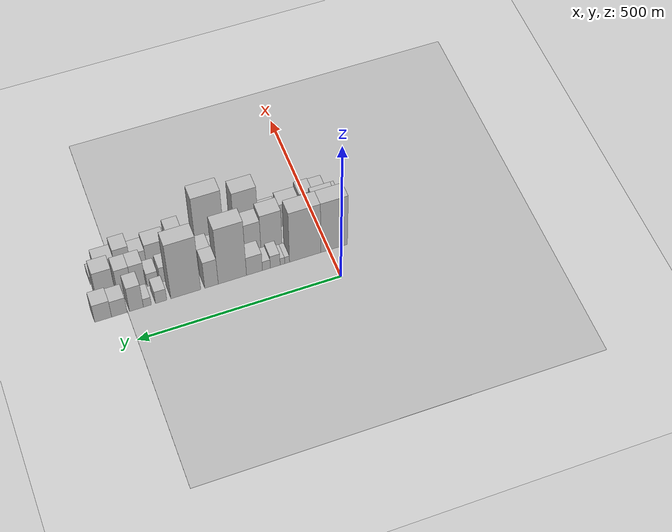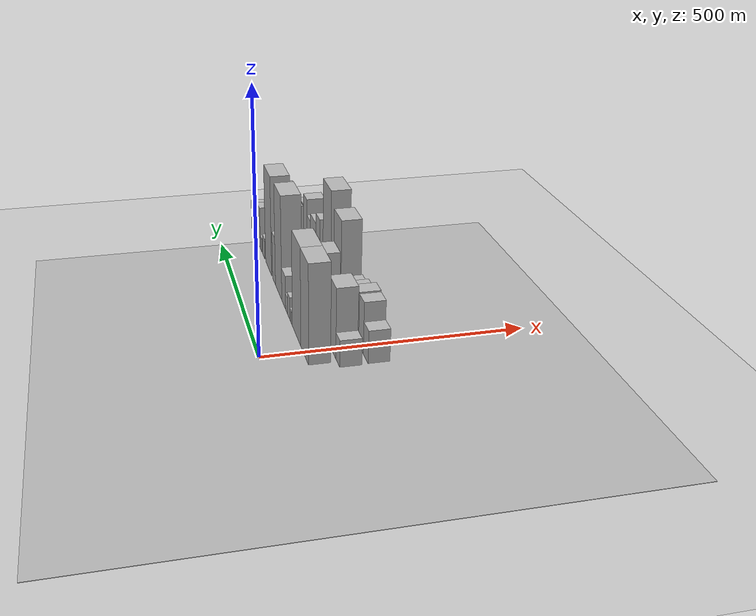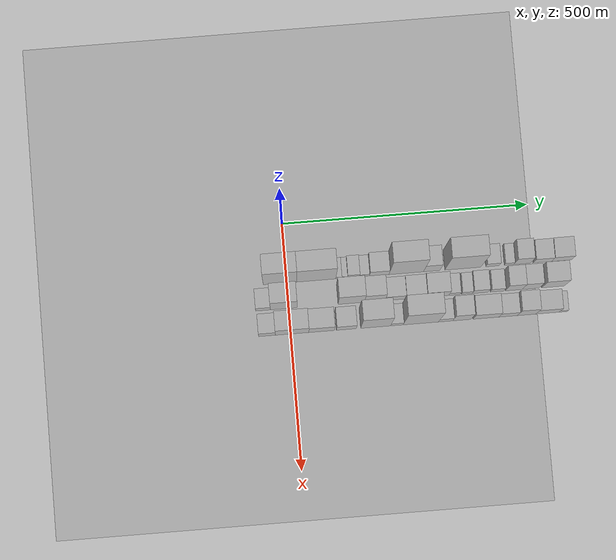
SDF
<sdf version="1.6">
 <world name="default">
  <include><name>ground_plane_1</name><uri>model://HANNAS_ground_plane</uri></include>
  <include>
   <name>ground_plane_2</name>
   <uri>model://HANNAS_ground_plane</uri>
   <pose>100 0 0  0 0 0</pose>
  </include>
  <model name="building_16">
   <static>1</static>
   <pose>100.0000 -12.9384 0 0.000000 0.000000 0.000000</pose>
   <link name="link">
    <pose>0 0 99.00 0 0 0</pose>
    <collision name="collision"><geometry><box><size>40.0000 68.1609 198.0000</size></box></geometry></collision>
    <visual name="visual">
     <cast_shadows>0</cast_shadows>
     <geometry><box><size>40.0000 68.1609 198.0000</size></box></geometry>
     <material>
      <script>
       <uri>model://HANNAS_wall/materials/scripts</uri>
       <uri>model://HANNAS_wall/materials/textures</uri>
       <name>vrc/HANNAS_wall</name>
      </script>
     </material>
    </visual>
   </link>
  </model>
  <model name="building_17">
   <static>1</static>
   <pose>100.0000 60.6066 0 0.000000 0.000000 0.000000</pose>
   <link name="link">
    <pose>0 0 99.00 0 0 0</pose>
    <collision name="collision"><geometry><box><size>40.0000 78.9291 198.0000</size></box></geometry></collision>
    <visual name="visual">
     <cast_shadows>0</cast_shadows>
     <geometry><box><size>40.0000 78.9291 198.0000</size></box></geometry>
     <material>
      <script>
       <uri>model://HANNAS_wall/materials/scripts</uri>
       <uri>model://HANNAS_wall/materials/textures</uri>
       <name>vrc/HANNAS_wall</name>
      </script>
     </material>
    </visual>
   </link>
  </model>
  <model name="building_18">
   <static>1</static>
   <pose>100.0000 106.1872 0 0.000000 0.000000 0.000000</pose>
   <link name="link">
    <pose>0 0 13.50 0 0 0</pose>
    <collision name="collision"><geometry><box><size>40.0000 12.2322 27.0000</size></box></geometry></collision>
    <visual name="visual">
     <cast_shadows>0</cast_shadows>
     <geometry><box><size>40.0000 12.2322 27.0000</size></box></geometry>
     <material>
      <script>
       <uri>model://HANNAS_wall/materials/scripts</uri>
       <uri>model://HANNAS_wall/materials/textures</uri>
       <name>vrc/HANNAS_wall</name>
      </script>
     </material>
    </visual>
   </link>
  </model>
  <model name="building_19">
   <static>1</static>
   <pose>100.0000 118.0213 0 0.000000 0.000000 0.000000</pose>
   <link name="link">
    <pose>0 0 13.50 0 0 0</pose>
    <collision name="collision"><geometry><box><size>40.0000 11.4359 27.0000</size></box></geometry></collision>
    <visual name="visual">
     <cast_shadows>0</cast_shadows>
     <geometry><box><size>40.0000 11.4359 27.0000</size></box></geometry>
     <material>
      <script>
       <uri>model://HANNAS_wall/materials/scripts</uri>
       <uri>model://HANNAS_wall/materials/textures</uri>
       <name>vrc/HANNAS_wall</name>
      </script>
     </material>
    </visual>
   </link>
  </model>
  <model name="building_20">
   <static>1</static>
   <pose>100.0000 136.0296 0 0.000000 0.000000 0.000000</pose>
   <link name="link">
    <pose>0 0 24.00 0 0 0</pose>
    <collision name="collision"><geometry><box><size>40.0000 24.5808 48.0000</size></box></geometry></collision>
    <visual name="visual">
     <cast_shadows>0</cast_shadows>
     <geometry><box><size>40.0000 24.5808 48.0000</size></box></geometry>
     <material>
      <script>
       <uri>model://HANNAS_wall/materials/scripts</uri>
       <uri>model://HANNAS_wall/materials/textures</uri>
       <name>vrc/HANNAS_wall</name>
      </script>
     </material>
    </visual>
   </link>
  </model>
  <model name="building_21">
   <static>1</static>
   <pose>100.0000 158.2399 0 0.000000 0.000000 0.000000</pose>
   <link name="link">
    <pose>0 0 18.00 0 0 0</pose>
    <collision name="collision"><geometry><box><size>40.0000 19.8397 36.0000</size></box></geometry></collision>
    <visual name="visual">
     <cast_shadows>0</cast_shadows>
     <geometry><box><size>40.0000 19.8397 36.0000</size></box></geometry>
     <material>
      <script>
       <uri>model://HANNAS_wall/materials/scripts</uri>
       <uri>model://HANNAS_wall/materials/textures</uri>
       <name>vrc/HANNAS_wall</name>
      </script>
     </material>
    </visual>
   </link>
  </model>
  <model name="building_22">
   <static>1</static>
   <pose>100.0000 188.0186 0 0.000000 0.000000 0.000000</pose>
   <link name="link">
    <pose>0 0 36.00 0 0 0</pose>
    <collision name="collision"><geometry><box><size>40.0000 39.7177 72.0000</size></box></geometry></collision>
    <visual name="visual">
     <cast_shadows>0</cast_shadows>
     <geometry><box><size>40.0000 39.7177 72.0000</size></box></geometry>
     <material>
      <script>
       <uri>model://HANNAS_wall/materials/scripts</uri>
       <uri>model://HANNAS_wall/materials/textures</uri>
       <name>vrc/HANNAS_wall</name>
      </script>
     </material>
    </visual>
   </link>
  </model>
  <model name="building_23">
   <static>1</static>
   <pose>100.0000 242.9697 0 0.000000 0.000000 0.000000</pose>
   <link name="link">
    <pose>0 0 111.00 0 0 0</pose>
    <collision name="collision"><geometry><box><size>40.0000 70.1845 222.0000</size></box></geometry></collision>
    <visual name="visual">
     <cast_shadows>0</cast_shadows>
     <geometry><box><size>40.0000 70.1845 222.0000</size></box></geometry>
     <material>
      <script>
       <uri>model://HANNAS_wall/materials/scripts</uri>
       <uri>model://HANNAS_wall/materials/textures</uri>
       <name>vrc/HANNAS_wall</name>
      </script>
     </material>
    </visual>
   </link>
  </model>
  <model name="building_24">
   <static>1</static>
   <pose>100.0000 294.7581 0 0.000000 0.000000 0.000000</pose>
   <link name="link">
    <pose>0 0 52.50 0 0 0</pose>
    <collision name="collision"><geometry><box><size>40.0000 33.3922 105.0000</size></box></geometry></collision>
    <visual name="visual">
     <cast_shadows>0</cast_shadows>
     <geometry><box><size>40.0000 33.3922 105.0000</size></box></geometry>
     <material>
      <script>
       <uri>model://HANNAS_wall/materials/scripts</uri>
       <uri>model://HANNAS_wall/materials/textures</uri>
       <name>vrc/HANNAS_wall</name>
      </script>
     </material>
    </visual>
   </link>
  </model>
  <model name="building_25">
   <static>1</static>
   <pose>100.0000 358.0408 0 0.000000 0.000000 0.000000</pose>
   <link name="link">
    <pose>0 0 109.50 0 0 0</pose>
    <collision name="collision"><geometry><box><size>40.0000 73.1731 219.0000</size></box></geometry></collision>
    <visual name="visual">
     <cast_shadows>0</cast_shadows>
     <geometry><box><size>40.0000 73.1731 219.0000</size></box></geometry>
     <material>
      <script>
       <uri>model://HANNAS_wall/materials/scripts</uri>
       <uri>model://HANNAS_wall/materials/textures</uri>
       <name>vrc/HANNAS_wall</name>
      </script>
     </material>
    </visual>
   </link>
  </model>
  <model name="building_26">
   <static>1</static>
   <pose>100.0000 418.4843 0 0.000000 0.000000 0.000000</pose>
   <link name="link">
    <pose>0 0 24.00 0 0 0</pose>
    <collision name="collision"><geometry><box><size>40.0000 27.7140 48.0000</size></box></geometry></collision>
    <visual name="visual">
     <cast_shadows>0</cast_shadows>
     <geometry><box><size>40.0000 27.7140 48.0000</size></box></geometry>
     <material>
      <script>
       <uri>model://HANNAS_wall/materials/scripts</uri>
       <uri>model://HANNAS_wall/materials/textures</uri>
       <name>vrc/HANNAS_wall</name>
      </script>
     </material>
    </visual>
   </link>
  </model>
  <model name="building_27">
   <static>1</static>
   <pose>100.0000 452.0103 0 0.000000 0.000000 0.000000</pose>
   <link name="link">
    <pose>0 0 16.50 0 0 0</pose>
    <collision name="collision"><geometry><box><size>40.0000 19.3379 33.0000</size></box></geometry></collision>
    <visual name="visual">
     <cast_shadows>0</cast_shadows>
     <geometry><box><size>40.0000 19.3379 33.0000</size></box></geometry>
     <material>
      <script>
       <uri>model://HANNAS_wall/materials/scripts</uri>
       <uri>model://HANNAS_wall/materials/textures</uri>
       <name>vrc/HANNAS_wall</name>
      </script>
     </material>
    </visual>
   </link>
  </model>
  <model name="building_28">
   <static>1</static>
   <pose>100.0000 478.5497 0 0.000000 0.000000 0.000000</pose>
   <link name="link">
    <pose>0 0 48.00 0 0 0</pose>
    <collision name="collision"><geometry><box><size>40.0000 33.7410 96.0000</size></box></geometry></collision>
    <visual name="visual">
     <cast_shadows>0</cast_shadows>
     <geometry><box><size>40.0000 33.7410 96.0000</size></box></geometry>
     <material>
      <script>
       <uri>model://HANNAS_wall/materials/scripts</uri>
       <uri>model://HANNAS_wall/materials/textures</uri>
       <name>vrc/HANNAS_wall</name>
      </script>
     </material>
    </visual>
   </link>
  </model>
  <model name="building_29">
   <static>1</static>
   <pose>100.0000 520.0226 0 0.000000 0.000000 0.000000</pose>
   <link name="link">
    <pose>0 0 31.50 0 0 0</pose>
    <collision name="collision"><geometry><box><size>40.0000 37.2048 63.0000</size></box></geometry></collision>
    <visual name="visual">
     <cast_shadows>0</cast_shadows>
     <geometry><box><size>40.0000 37.2048 63.0000</size></box></geometry>
     <material>
      <script>
       <uri>model://HANNAS_wall/materials/scripts</uri>
       <uri>model://HANNAS_wall/materials/textures</uri>
       <name>vrc/HANNAS_wall</name>
      </script>
     </material>
    </visual>
   </link>
  </model>
  <model name="building_30">
   <static>1</static>
   <pose>100.0000 558.9845 0 0.000000 0.000000 0.000000</pose>
   <link name="link">
    <pose>0 0 34.50 0 0 0</pose>
    <collision name="collision"><geometry><box><size>40.0000 40.7190 69.0000</size></box></geometry></collision>
    <visual name="visual">
     <cast_shadows>0</cast_shadows>
     <geometry><box><size>40.0000 40.7190 69.0000</size></box></geometry>
     <material>
      <script>
       <uri>model://HANNAS_wall/materials/scripts</uri>
       <uri>model://HANNAS_wall/materials/textures</uri>
       <name>vrc/HANNAS_wall</name>
      </script>
     </material>
    </visual>
   </link>
  </model>
  <model name="building_49">
   <static>1</static>
   <pose>152.0000 -51.4175 0 0.000000 0.000000 0.000000</pose>
   <link name="link">
    <pose>0 0 27.00 0 0 0</pose>
    <collision name="collision"><geometry><box><size>40.0000 29.8444 54.0000</size></box></geometry></collision>
    <visual name="visual">
     <cast_shadows>0</cast_shadows>
     <geometry><box><size>40.0000 29.8444 54.0000</size></box></geometry>
     <material>
      <script>
       <uri>model://HANNAS_wall/materials/scripts</uri>
       <uri>model://HANNAS_wall/materials/textures</uri>
       <name>vrc/HANNAS_wall</name>
      </script>
     </material>
    </visual>
   </link>
  </model>
  <model name="building_50">
   <static>1</static>
   <pose>152.0000 -9.5820 0 0.000000 0.000000 0.000000</pose>
   <link name="link">
    <pose>0 0 70.50 0 0 0</pose>
    <collision name="collision"><geometry><box><size>40.0000 53.8266 141.0000</size></box></geometry></collision>
    <visual name="visual">
     <cast_shadows>0</cast_shadows>
     <geometry><box><size>40.0000 53.8266 141.0000</size></box></geometry>
     <material>
      <script>
       <uri>model://HANNAS_wall/materials/scripts</uri>
       <uri>model://HANNAS_wall/materials/textures</uri>
       <name>vrc/HANNAS_wall</name>
      </script>
     </material>
    </visual>
   </link>
  </model>
  <model name="building_51">
   <static>1</static>
   <pose>152.0000 126.9348 0 0.000000 0.000000 0.000000</pose>
   <link name="link">
    <pose>0 0 72.00 0 0 0</pose>
    <collision name="collision"><geometry><box><size>40.0000 53.0690 144.0000</size></box></geometry></collision>
    <visual name="visual">
     <cast_shadows>0</cast_shadows>
     <geometry><box><size>40.0000 53.0690 144.0000</size></box></geometry>
     <material>
      <script>
       <uri>model://HANNAS_wall/materials/scripts</uri>
       <uri>model://HANNAS_wall/materials/textures</uri>
       <name>vrc/HANNAS_wall</name>
      </script>
     </material>
    </visual>
   </link>
  </model>
  <model name="building_52">
   <static>1</static>
   <pose>152.0000 174.4519 0 0.000000 0.000000 0.000000</pose>
   <link name="link">
    <pose>0 0 63.00 0 0 0</pose>
    <collision name="collision"><geometry><box><size>40.0000 41.9653 126.0000</size></box></geometry></collision>
    <visual name="visual">
     <cast_shadows>0</cast_shadows>
     <geometry><box><size>40.0000 41.9653 126.0000</size></box></geometry>
     <material>
      <script>
       <uri>model://HANNAS_wall/materials/scripts</uri>
       <uri>model://HANNAS_wall/materials/textures</uri>
       <name>vrc/HANNAS_wall</name>
      </script>
     </material>
    </visual>
   </link>
  </model>
  <model name="building_53">
   <static>1</static>
   <pose>152.0000 215.9594 0 0.000000 0.000000 0.000000</pose>
   <link name="link">
    <pose>0 0 34.50 0 0 0</pose>
    <collision name="collision"><geometry><box><size>40.0000 41.0497 69.0000</size></box></geometry></collision>
    <visual name="visual">
     <cast_shadows>0</cast_shadows>
     <geometry><box><size>40.0000 41.0497 69.0000</size></box></geometry>
     <material>
      <script>
       <uri>model://HANNAS_wall/materials/scripts</uri>
       <uri>model://HANNAS_wall/materials/textures</uri>
       <name>vrc/HANNAS_wall</name>
      </script>
     </material>
    </visual>
   </link>
  </model>
  <model name="building_54">
   <static>1</static>
   <pose>152.0000 257.1814 0 0.000000 0.000000 0.000000</pose>
   <link name="link">
    <pose>0 0 37.50 0 0 0</pose>
    <collision name="collision"><geometry><box><size>40.0000 41.3941 75.0000</size></box></geometry></collision>
    <visual name="visual">
     <cast_shadows>0</cast_shadows>
     <geometry><box><size>40.0000 41.3941 75.0000</size></box></geometry>
     <material>
      <script>
       <uri>model://HANNAS_wall/materials/scripts</uri>
       <uri>model://HANNAS_wall/materials/textures</uri>
       <name>vrc/HANNAS_wall</name>
      </script>
     </material>
    </visual>
   </link>
  </model>
  <model name="building_55">
   <static>1</static>
   <pose>152.0000 301.3035 0 0.000000 0.000000 0.000000</pose>
   <link name="link">
    <pose>0 0 43.50 0 0 0</pose>
    <collision name="collision"><geometry><box><size>40.0000 46.8502 87.0000</size></box></geometry></collision>
    <visual name="visual">
     <cast_shadows>0</cast_shadows>
     <geometry><box><size>40.0000 46.8502 87.0000</size></box></geometry>
     <material>
      <script>
       <uri>model://HANNAS_wall/materials/scripts</uri>
       <uri>model://HANNAS_wall/materials/textures</uri>
       <name>vrc/HANNAS_wall</name>
      </script>
     </material>
    </visual>
   </link>
  </model>
  <model name="building_56">
   <static>1</static>
   <pose>152.0000 336.2653 0 0.000000 0.000000 0.000000</pose>
   <link name="link">
    <pose>0 0 21.00 0 0 0</pose>
    <collision name="collision"><geometry><box><size>40.0000 23.0735 42.0000</size></box></geometry></collision>
    <visual name="visual">
     <cast_shadows>0</cast_shadows>
     <geometry><box><size>40.0000 23.0735 42.0000</size></box></geometry>
     <material>
      <script>
       <uri>model://HANNAS_wall/materials/scripts</uri>
       <uri>model://HANNAS_wall/materials/textures</uri>
       <name>vrc/HANNAS_wall</name>
      </script>
     </material>
    </visual>
   </link>
  </model>
  <model name="building_57">
   <static>1</static>
   <pose>152.0000 361.8748 0 0.000000 0.000000 0.000000</pose>
   <link name="link">
    <pose>0 0 19.50 0 0 0</pose>
    <collision name="collision"><geometry><box><size>40.0000 22.1456 39.0000</size></box></geometry></collision>
    <visual name="visual">
     <cast_shadows>0</cast_shadows>
     <geometry><box><size>40.0000 22.1456 39.0000</size></box></geometry>
     <material>
      <script>
       <uri>model://HANNAS_wall/materials/scripts</uri>
       <uri>model://HANNAS_wall/materials/textures</uri>
       <name>vrc/HANNAS_wall</name>
      </script>
     </material>
    </visual>
   </link>
  </model>
  <model name="building_58">
   <static>1</static>
   <pose>152.0000 388.9664 0 0.000000 0.000000 0.000000</pose>
   <link name="link">
    <pose>0 0 30.00 0 0 0</pose>
    <collision name="collision"><geometry><box><size>40.0000 32.0376 60.0000</size></box></geometry></collision>
    <visual name="visual">
     <cast_shadows>0</cast_shadows>
     <geometry><box><size>40.0000 32.0376 60.0000</size></box></geometry>
     <material>
      <script>
       <uri>model://HANNAS_wall/materials/scripts</uri>
       <uri>model://HANNAS_wall/materials/textures</uri>
       <name>vrc/HANNAS_wall</name>
      </script>
     </material>
    </visual>
   </link>
  </model>
  <model name="building_59">
   <static>1</static>
   <pose>152.0000 422.7655 0 0.000000 0.000000 0.000000</pose>
   <link name="link">
    <pose>0 0 25.50 0 0 0</pose>
    <collision name="collision"><geometry><box><size>40.0000 27.5606 51.0000</size></box></geometry></collision>
    <visual name="visual">
     <cast_shadows>0</cast_shadows>
     <geometry><box><size>40.0000 27.5606 51.0000</size></box></geometry>
     <material>
      <script>
       <uri>model://HANNAS_wall/materials/scripts</uri>
       <uri>model://HANNAS_wall/materials/textures</uri>
       <name>vrc/HANNAS_wall</name>
      </script>
     </material>
    </visual>
   </link>
  </model>
  <model name="building_60">
   <static>1</static>
   <pose>152.0000 456.7086 0 0.000000 0.000000 0.000000</pose>
   <link name="link">
    <pose>0 0 51.00 0 0 0</pose>
    <collision name="collision"><geometry><box><size>40.0000 34.3255 102.0000</size></box></geometry></collision>
    <visual name="visual">
     <cast_shadows>0</cast_shadows>
     <geometry><box><size>40.0000 34.3255 102.0000</size></box></geometry>
     <material>
      <script>
       <uri>model://HANNAS_wall/materials/scripts</uri>
       <uri>model://HANNAS_wall/materials/textures</uri>
       <name>vrc/HANNAS_wall</name>
      </script>
     </material>
    </visual>
   </link>
  </model>
  <model name="building_61">
   <static>1</static>
   <pose>152.0000 491.1172 0 0.000000 0.000000 0.000000</pose>
   <link name="link">
    <pose>0 0 51.00 0 0 0</pose>
    <collision name="collision"><geometry><box><size>40.0000 34.4919 102.0000</size></box></geometry></collision>
    <visual name="visual">
     <cast_shadows>0</cast_shadows>
     <geometry><box><size>40.0000 34.4919 102.0000</size></box></geometry>
     <material>
      <script>
       <uri>model://HANNAS_wall/materials/scripts</uri>
       <uri>model://HANNAS_wall/materials/textures</uri>
       <name>vrc/HANNAS_wall</name>
      </script>
     </material>
    </visual>
   </link>
  </model>
  <model name="building_62">
   <static>1</static>
   <pose>152.0000 536.3195 0 0.000000 0.000000 0.000000</pose>
   <link name="link">
    <pose>0 0 58.50 0 0 0</pose>
    <collision name="collision"><geometry><box><size>40.0000 45.9126 117.0000</size></box></geometry></collision>
    <visual name="visual">
     <cast_shadows>0</cast_shadows>
     <geometry><box><size>40.0000 45.9126 117.0000</size></box></geometry>
     <material>
      <script>
       <uri>model://HANNAS_wall/materials/scripts</uri>
       <uri>model://HANNAS_wall/materials/textures</uri>
       <name>vrc/HANNAS_wall</name>
      </script>
     </material>
    </visual>
   </link>
  </model>
  <model name="building_75">
   <static>1</static>
   <pose>204.0000 -47.5161 0 0.000000 0.000000 0.000000</pose>
   <link name="link">
    <pose>0 0 33.00 0 0 0</pose>
    <collision name="collision"><geometry><box><size>40.0000 33.8776 66.0000</size></box></geometry></collision>
    <visual name="visual">
     <cast_shadows>0</cast_shadows>
     <geometry><box><size>40.0000 33.8776 66.0000</size></box></geometry>
     <material>
      <script>
       <uri>model://HANNAS_wall/materials/scripts</uri>
       <uri>model://HANNAS_wall/materials/textures</uri>
       <name>vrc/HANNAS_wall</name>
      </script>
     </material>
    </visual>
   </link>
  </model>
  <model name="building_76">
   <static>1</static>
   <pose>204.0000 -13.7447 0 0.000000 0.000000 0.000000</pose>
   <link name="link">
    <pose>0 0 52.50 0 0 0</pose>
    <collision name="collision"><geometry><box><size>40.0000 33.6651 105.0000</size></box></geometry></collision>
    <visual name="visual">
     <cast_shadows>0</cast_shadows>
     <geometry><box><size>40.0000 33.6651 105.0000</size></box></geometry>
     <material>
      <script>
       <uri>model://HANNAS_wall/materials/scripts</uri>
       <uri>model://HANNAS_wall/materials/textures</uri>
       <name>vrc/HANNAS_wall</name>
      </script>
     </material>
    </visual>
   </link>
  </model>
  <model name="building_77">
   <static>1</static>
   <pose>204.0000 19.9816 0 0.000000 0.000000 0.000000</pose>
   <link name="link">
    <pose>0 0 54.00 0 0 0</pose>
    <collision name="collision"><geometry><box><size>40.0000 33.7875 108.0000</size></box></geometry></collision>
    <visual name="visual">
     <cast_shadows>0</cast_shadows>
     <geometry><box><size>40.0000 33.7875 108.0000</size></box></geometry>
     <material>
      <script>
       <uri>model://HANNAS_wall/materials/scripts</uri>
       <uri>model://HANNAS_wall/materials/textures</uri>
       <name>vrc/HANNAS_wall</name>
      </script>
     </material>
    </visual>
   </link>
  </model>
  <model name="building_78">
   <static>1</static>
   <pose>204.0000 62.8105 0 0.000000 0.000000 0.000000</pose>
   <link name="link">
    <pose>0 0 45.00 0 0 0</pose>
    <collision name="collision"><geometry><box><size>40.0000 51.8705 90.0000</size></box></geometry></collision>
    <visual name="visual">
     <cast_shadows>0</cast_shadows>
     <geometry><box><size>40.0000 51.8705 90.0000</size></box></geometry>
     <material>
      <script>
       <uri>model://HANNAS_wall/materials/scripts</uri>
       <uri>model://HANNAS_wall/materials/textures</uri>
       <name>vrc/HANNAS_wall</name>
      </script>
     </material>
    </visual>
   </link>
  </model>
  <model name="building_79">
   <static>1</static>
   <pose>204.0000 112.8228 0 0.000000 0.000000 0.000000</pose>
   <link name="link">
    <pose>0 0 39.00 0 0 0</pose>
    <collision name="collision"><geometry><box><size>40.0000 40.1541 78.0000</size></box></geometry></collision>
    <visual name="visual">
     <cast_shadows>0</cast_shadows>
     <geometry><box><size>40.0000 40.1541 78.0000</size></box></geometry>
     <material>
      <script>
       <uri>model://HANNAS_wall/materials/scripts</uri>
       <uri>model://HANNAS_wall/materials/textures</uri>
       <name>vrc/HANNAS_wall</name>
      </script>
     </material>
    </visual>
   </link>
  </model>
  <model name="building_80">
   <static>1</static>
   <pose>204.0000 172.1068 0 0.000000 0.000000 0.000000</pose>
   <link name="link">
    <pose>0 0 94.50 0 0 0</pose>
    <collision name="collision"><geometry><box><size>40.0000 60.4139 189.0000</size></box></geometry></collision>
    <visual name="visual">
     <cast_shadows>0</cast_shadows>
     <geometry><box><size>40.0000 60.4139 189.0000</size></box></geometry>
     <material>
      <script>
       <uri>model://HANNAS_wall/materials/scripts</uri>
       <uri>model://HANNAS_wall/materials/textures</uri>
       <name>vrc/HANNAS_wall</name>
      </script>
     </material>
    </visual>
   </link>
  </model>
  <model name="building_81">
   <static>1</static>
   <pose>204.0000 215.1032 0 0.000000 0.000000 0.000000</pose>
   <link name="link">
    <pose>0 0 22.50 0 0 0</pose>
    <collision name="collision"><geometry><box><size>40.0000 25.5790 45.0000</size></box></geometry></collision>
    <visual name="visual">
     <cast_shadows>0</cast_shadows>
     <geometry><box><size>40.0000 25.5790 45.0000</size></box></geometry>
     <material>
      <script>
       <uri>model://HANNAS_wall/materials/scripts</uri>
       <uri>model://HANNAS_wall/materials/textures</uri>
       <name>vrc/HANNAS_wall</name>
      </script>
     </material>
    </visual>
   </link>
  </model>
  <model name="building_82">
   <static>1</static>
   <pose>204.0000 263.6049 0 0.000000 0.000000 0.000000</pose>
   <link name="link">
    <pose>0 0 108.00 0 0 0</pose>
    <collision name="collision"><geometry><box><size>40.0000 71.4243 216.0000</size></box></geometry></collision>
    <visual name="visual">
     <cast_shadows>0</cast_shadows>
     <geometry><box><size>40.0000 71.4243 216.0000</size></box></geometry>
     <material>
      <script>
       <uri>model://HANNAS_wall/materials/scripts</uri>
       <uri>model://HANNAS_wall/materials/textures</uri>
       <name>vrc/HANNAS_wall</name>
      </script>
     </material>
    </visual>
   </link>
  </model>
  <model name="building_83">
   <static>1</static>
   <pose>204.0000 313.8555 0 0.000000 0.000000 0.000000</pose>
   <link name="link">
    <pose>0 0 28.50 0 0 0</pose>
    <collision name="collision"><geometry><box><size>40.0000 29.0768 57.0000</size></box></geometry></collision>
    <visual name="visual">
     <cast_shadows>0</cast_shadows>
     <geometry><box><size>40.0000 29.0768 57.0000</size></box></geometry>
     <material>
      <script>
       <uri>model://HANNAS_wall/materials/scripts</uri>
       <uri>model://HANNAS_wall/materials/textures</uri>
       <name>vrc/HANNAS_wall</name>
      </script>
     </material>
    </visual>
   </link>
  </model>
  <model name="building_84">
   <static>1</static>
   <pose>204.0000 346.9499 0 0.000000 0.000000 0.000000</pose>
   <link name="link">
    <pose>0 0 57.00 0 0 0</pose>
    <collision name="collision"><geometry><box><size>40.0000 37.1121 114.0000</size></box></geometry></collision>
    <visual name="visual">
     <cast_shadows>0</cast_shadows>
     <geometry><box><size>40.0000 37.1121 114.0000</size></box></geometry>
     <material>
      <script>
       <uri>model://HANNAS_wall/materials/scripts</uri>
       <uri>model://HANNAS_wall/materials/textures</uri>
       <name>vrc/HANNAS_wall</name>
      </script>
     </material>
    </visual>
   </link>
  </model>
  <model name="building_85">
   <static>1</static>
   <pose>204.0000 395.6365 0 0.000000 0.000000 0.000000</pose>
   <link name="link">
    <pose>0 0 45.00 0 0 0</pose>
    <collision name="collision"><geometry><box><size>40.0000 52.2611 90.0000</size></box></geometry></collision>
    <visual name="visual">
     <cast_shadows>0</cast_shadows>
     <geometry><box><size>40.0000 52.2611 90.0000</size></box></geometry>
     <material>
      <script>
       <uri>model://HANNAS_wall/materials/scripts</uri>
       <uri>model://HANNAS_wall/materials/textures</uri>
       <name>vrc/HANNAS_wall</name>
      </script>
     </material>
    </visual>
   </link>
  </model>
  <model name="building_86">
   <static>1</static>
   <pose>204.0000 440.4261 0 0.000000 0.000000 0.000000</pose>
   <link name="link">
    <pose>0 0 36.00 0 0 0</pose>
    <collision name="collision"><geometry><box><size>40.0000 37.3181 72.0000</size></box></geometry></collision>
    <visual name="visual">
     <cast_shadows>0</cast_shadows>
     <geometry><box><size>40.0000 37.3181 72.0000</size></box></geometry>
     <material>
      <script>
       <uri>model://HANNAS_wall/materials/scripts</uri>
       <uri>model://HANNAS_wall/materials/textures</uri>
       <name>vrc/HANNAS_wall</name>
      </script>
     </material>
    </visual>
   </link>
  </model>
  <model name="building_87">
   <static>1</static>
   <pose>204.0000 477.8053 0 0.000000 0.000000 0.000000</pose>
   <link name="link">
    <pose>0 0 54.00 0 0 0</pose>
    <collision name="collision"><geometry><box><size>40.0000 37.4404 108.0000</size></box></geometry></collision>
    <visual name="visual">
     <cast_shadows>0</cast_shadows>
     <geometry><box><size>40.0000 37.4404 108.0000</size></box></geometry>
     <material>
      <script>
       <uri>model://HANNAS_wall/materials/scripts</uri>
       <uri>model://HANNAS_wall/materials/textures</uri>
       <name>vrc/HANNAS_wall</name>
      </script>
     </material>
    </visual>
   </link>
  </model>
  <model name="building_88">
   <static>1</static>
   <pose>204.0000 520.0222 0 0.000000 0.000000 0.000000</pose>
   <link name="link">
    <pose>0 0 40.50 0 0 0</pose>
    <collision name="collision"><geometry><box><size>40.0000 46.9932 81.0000</size></box></geometry></collision>
    <visual name="visual">
     <cast_shadows>0</cast_shadows>
     <geometry><box><size>40.0000 46.9932 81.0000</size></box></geometry>
     <material>
      <script>
       <uri>model://HANNAS_wall/materials/scripts</uri>
       <uri>model://HANNAS_wall/materials/textures</uri>
       <name>vrc/HANNAS_wall</name>
      </script>
     </material>
    </visual>
   </link>
  </model>
  <model name="building_89">
   <static>1</static>
   <pose>204.0000 552.0953 0 0.000000 0.000000 0.000000</pose>
   <link name="link">
    <pose>0 0 15.00 0 0 0</pose>
    <collision name="collision"><geometry><box><size>40.0000 17.1531 30.0000</size></box></geometry></collision>
    <visual name="visual">
     <cast_shadows>0</cast_shadows>
     <geometry><box><size>40.0000 17.1531 30.0000</size></box></geometry>
     <material>
      <script>
       <uri>model://HANNAS_wall/materials/scripts</uri>
       <uri>model://HANNAS_wall/materials/textures</uri>
       <name>vrc/HANNAS_wall</name>
      </script>
     </material>
    </visual>
   </link>
  </model>
 </world>
</sdf>
